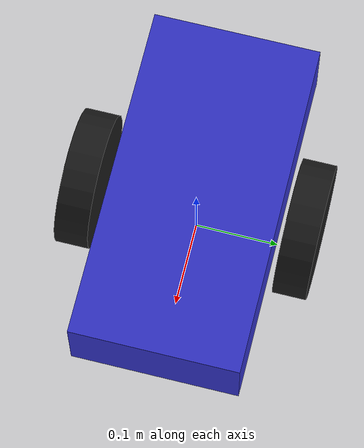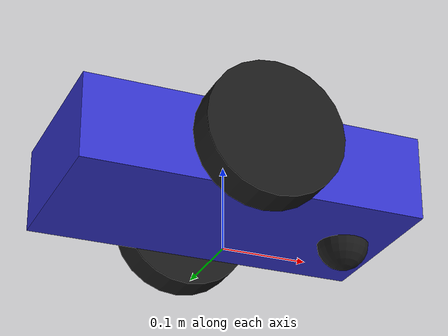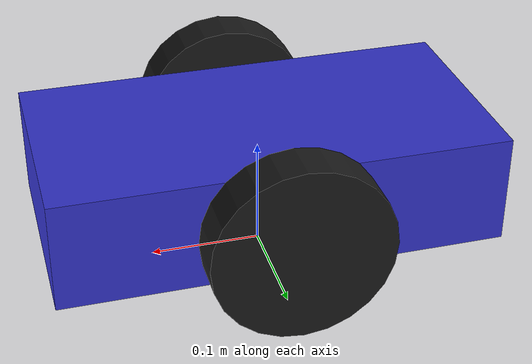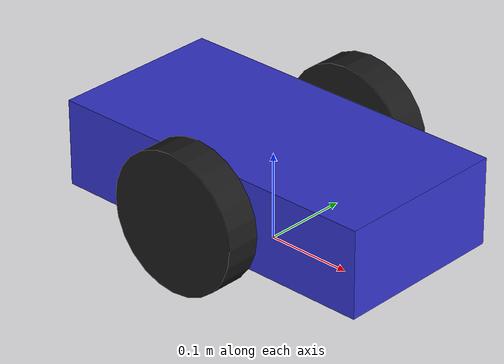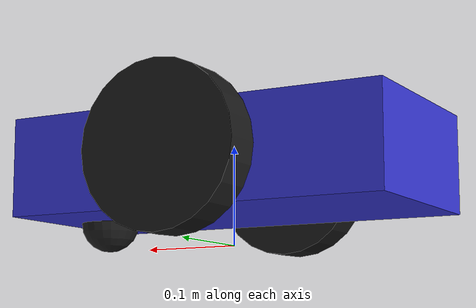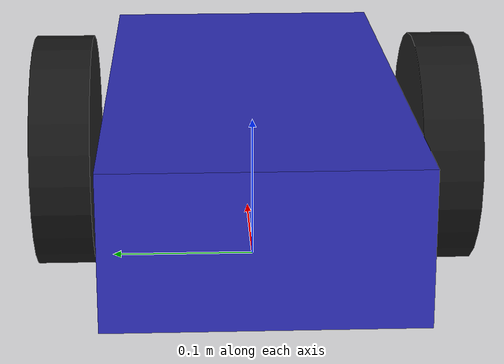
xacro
<?xml version="1.0"?>
<robot xmlns:xacro="http://www.ros.org/wiki/xacro" name="fleetgraph_robot">

  <xacro:arg name="robot_name" default="robot_1"/>
  <xacro:arg name="camera" default="false"/>

  <!-- Properties: defined once, used everywhere as ${...}. -->
  <xacro:property name="body_l" value="0.4"/>
  <xacro:property name="body_w" value="0.2"/>
  <xacro:property name="body_h" value="0.1"/>
  <xacro:property name="body_mass" value="5.0"/>
  <xacro:property name="wheel_r" value="0.08"/>
  <xacro:property name="wheel_sep" value="0.26"/>
  <xacro:property name="wheel_sep_kinematic" value="0.22"/>
  <xacro:property name="wheel_w" value="0.04"/>
  <xacro:property name="wheel_mass" value="1.0"/>
  <!-- caster radius: bottom exactly on the ground -->
  <xacro:property name="caster_r" value="${wheel_r - body_h/2}"/>
  <xacro:property name="caster_x" value="${body_l/2 - 0.05}"/>
  <xacro:property name="caster_mass" value="0.5"/>

  <material name="blue">
    <color rgba="0.2 0.2 0.8 1.0"/>
  </material>
  <material name="black">
    <color rgba="0.1 0.1 0.1 1.0"/>
  </material>

  <!-- base_footprint: empty frame on the ground under the robot. -->
  <link name="base_footprint"/>

  <!-- base_link lifted by one wheel radius so the wheels touch the ground. -->
  <joint name="footprint_joint" type="fixed">
    <parent link="base_footprint"/>
    <child link="base_link"/>
    <origin xyz="0 0 ${wheel_r}" rpy="0 0 0"/>
  </joint>

  <link name="base_link">
    <visual>
      <geometry>
        <box size="${body_l} ${body_w} ${body_h}"/>
      </geometry>
      <material name="blue"/>
    </visual>
    <collision>
      <geometry>
        <box size="${body_l} ${body_w} ${body_h}"/>
      </geometry>
    </collision>
    <inertial>
      <mass value="${body_mass}"/>
      <!-- solid box: Ixx = m(w^2+h^2)/12, Iyy = m(l^2+h^2)/12, Izz = m(l^2+w^2)/12 -->
      <inertia
        ixx="${body_mass*(body_w*body_w + body_h*body_h)/12}"
        ixy="0.0" ixz="0.0"
        iyy="${body_mass*(body_l*body_l + body_h*body_h)/12}"
        iyz="0.0"
        izz="${body_mass*(body_l*body_l + body_w*body_w)/12}"/>
    </inertial>
  </link>

  <!-- Wheel macro. A URDF cylinder's axis is z, so visual/collision/inertial
       origins are rotated by pi/2 about x to put the axle along y. -->
  <xacro:macro name="wheel" params="name y">
    <link name="${name}_wheel">
      <visual>
        <origin xyz="0 0 0" rpy="${pi/2} 0 0"/>
        <geometry>
          <cylinder radius="${wheel_r}" length="${wheel_w}"/>
        </geometry>
        <material name="black"/>
      </visual>
      <collision>
        <origin xyz="0 0 0" rpy="${pi/2} 0 0"/>
        <geometry>
          <cylinder radius="${wheel_r}" length="${wheel_w}"/>
        </geometry>
      </collision>
      <inertial>
        <origin xyz="0 0 0" rpy="${pi/2} 0 0"/>
        <mass value="${wheel_mass}"/>
        <!-- solid cylinder: Ixx = Iyy = m(3r^2+l^2)/12, Izz = mr^2/2 -->
        <inertia
          ixx="${wheel_mass*(3*wheel_r*wheel_r + wheel_w*wheel_w)/12}"
          ixy="0.0" ixz="0.0"
          iyy="${wheel_mass*(3*wheel_r*wheel_r + wheel_w*wheel_w)/12}"
          iyz="0.0"
          izz="${wheel_mass*wheel_r*wheel_r/2}"/>
      </inertial>
    </link>
    <joint name="${name}_wheel_joint" type="continuous">
      <parent link="base_link"/>
      <child link="${name}_wheel"/>
      <origin xyz="0 ${y} 0" rpy="0 0 0"/>
      <axis xyz="0 1 0"/>
    </joint>
  </xacro:macro>

  <xacro:wheel name="left" y="${wheel_sep/2}"/>
  <xacro:wheel name="right" y="${-wheel_sep/2}"/>

  <joint name="caster_joint" type="fixed">
    <parent link="base_link"/>
    <child link="caster"/>
    <origin xyz="${caster_x} 0 ${-(wheel_r - caster_r)}" rpy="0 0 0"/>
  </joint>
  <link name="caster">
    <visual>
      <geometry>
        <sphere radius="${caster_r}"/>
      </geometry>
      <material name="black"/>
    </visual>
    <collision>
      <geometry>
        <sphere radius="${caster_r}"/>
      </geometry>
    </collision>
    <inertial>
      <mass value="${caster_mass}"/>
      <!-- solid sphere: I = 2/5 m r^2 -->
      <inertia
        ixx="${2*caster_mass*caster_r*caster_r/5}"
        ixy="0.0" ixz="0.0"
        iyy="${2*caster_mass*caster_r*caster_r/5}"
        iyz="0.0"
        izz="${2*caster_mass*caster_r*caster_r/5}"/>
    </inertial>
  </link>
  <gazebo reference="caster">
    <mu1>0.0</mu1>
    <mu2>0.0</mu2>
  </gazebo>

  <joint name="lidar_joint" type="fixed">
    <parent link="base_link"/>
    <child link="lidar_link"/>
    <origin xyz="0.1 0 ${body_h/2 + 0.06}" rpy="0 0 0"/>
  </joint>
  <link name="lidar_link"/>

  <!-- Camera at the front edge of the top. -->
  <joint name="camera_joint" type="fixed">
    <parent link="base_link"/>
    <child link="camera_link"/>
    <origin xyz="${body_l/2} 0 ${body_h/2}" rpy="0 0 0"/>
  </joint>
  <link name="camera_link"/>

  <!-- ================= Gazebo extensions ================= -->

  <gazebo>
    <plugin filename="gz-sim-diff-drive-system"
            name="gz::sim::systems::DiffDrive">
      <left_joint>left_wheel_joint</left_joint>
      <right_joint>right_wheel_joint</right_joint>
      <wheel_separation>${wheel_sep_kinematic}</wheel_separation>
      <wheel_radius>${wheel_r}</wheel_radius>
      <max_linear_acceleration>1.0</max_linear_acceleration>
      <max_angular_acceleration>2.0</max_angular_acceleration>
      <topic>/$(arg robot_name)/cmd_vel</topic>
      <odom_topic>/$(arg robot_name)/odom</odom_topic>
      <tf_topic>/$(arg robot_name)/tf</tf_topic>
      <odom_publish_frequency>30</odom_publish_frequency>
      <frame_id>odom</frame_id>
      <child_frame_id>base_footprint</child_frame_id>
    </plugin>
    <!-- Ground truth (world pose as odometry) for TEST VERIFICATION ONLY.
         Robot software must never subscribe to it (sim-to-real rule). -->
    <plugin filename="gz-sim-odometry-publisher-system"
            name="gz::sim::systems::OdometryPublisher">
      <odom_frame>world</odom_frame>
      <robot_base_frame>$(arg robot_name)</robot_base_frame>
      <odom_topic>/ground_truth/$(arg robot_name)/odom</odom_topic>
      <odom_publish_frequency>10</odom_publish_frequency>
      <dimensions>2</dimensions>
    </plugin>
    <plugin filename="gz-sim-joint-state-publisher-system"
            name="gz::sim::systems::JointStatePublisher">
      <topic>/$(arg robot_name)/joint_states</topic>
      <update_rate>30</update_rate>
      <joint_name>left_wheel_joint</joint_name>
      <joint_name>right_wheel_joint</joint_name>
    </plugin>
  </gazebo>

  <!-- Lidar: gpu_lidar on lidar_link, 360 beams over a full circle, 10 Hz,
       range 0.12-8 m. gz_frame_id = frame_id in each message. -->
  <gazebo reference="lidar_link">
    <sensor name="gpu_lidar" type="gpu_lidar">
      <always_on>true</always_on>
      <update_rate>10</update_rate>
      <topic>/$(arg robot_name)/scan</topic>
      <gz_frame_id>lidar_link</gz_frame_id>
      <lidar>
        <scan>
          <horizontal>
            <samples>360</samples>
            <resolution>1</resolution>
            <min_angle>-3.1415926</min_angle>
            <max_angle>3.1415926</max_angle>
          </horizontal>
        </scan>
        <range>
          <min>0.12</min>
          <max>8.0</max>
          <resolution>0.01</resolution>
        </range>
      </lidar>
    </sensor>
  </gazebo>

  <!-- Camera on camera_link (only with camera:=true): 640x480 RGB, 80 deg
       horizontal FOV, gz derives camera_info next to the image topic. -->
  <xacro:if value="$(arg camera)">
  <gazebo reference="camera_link">
    <sensor name="camera" type="camera">
      <always_on>true</always_on>
      <!-- 5 Hz (tutorial: 30): software rendering is the sim bottleneck. -->
      <update_rate>5</update_rate>
      <topic>/$(arg robot_name)/camera/image</topic>
      <gz_frame_id>camera_link</gz_frame_id>
      <camera>
        <horizontal_fov>1.3963</horizontal_fov>
        <image>
          <width>640</width>
          <height>480</height>
          <format>R8G8B8</format>
        </image>
        <clip>
          <near>0.05</near>
          <far>100.0</far>
        </clip>
      </camera>
    </sensor>
  </gazebo>
  </xacro:if>

</robot>
